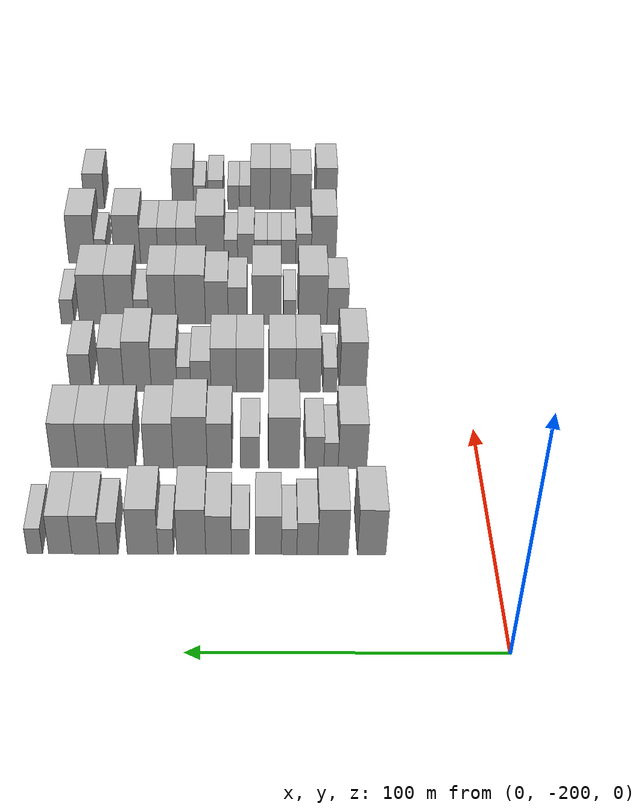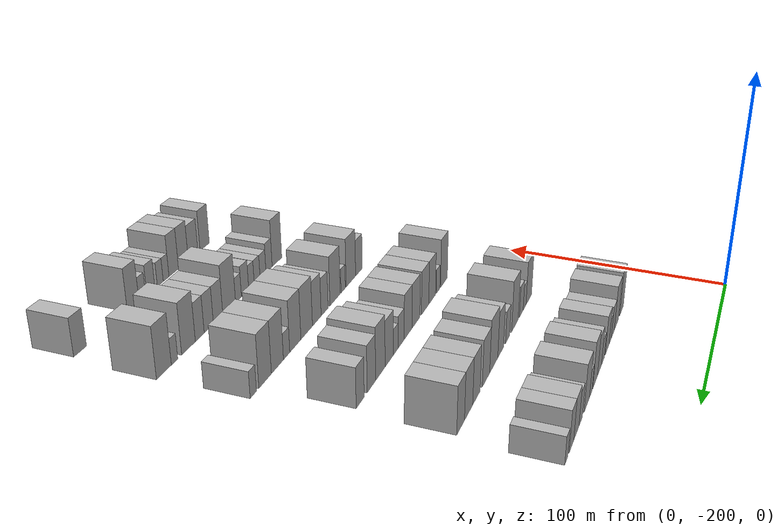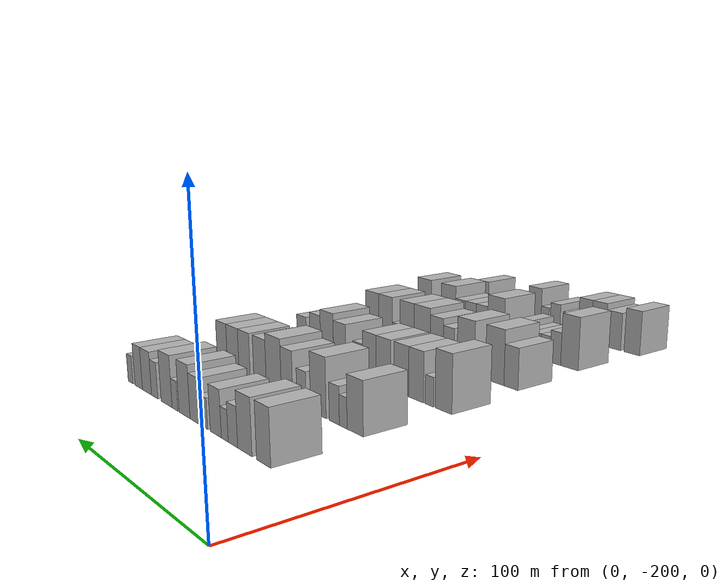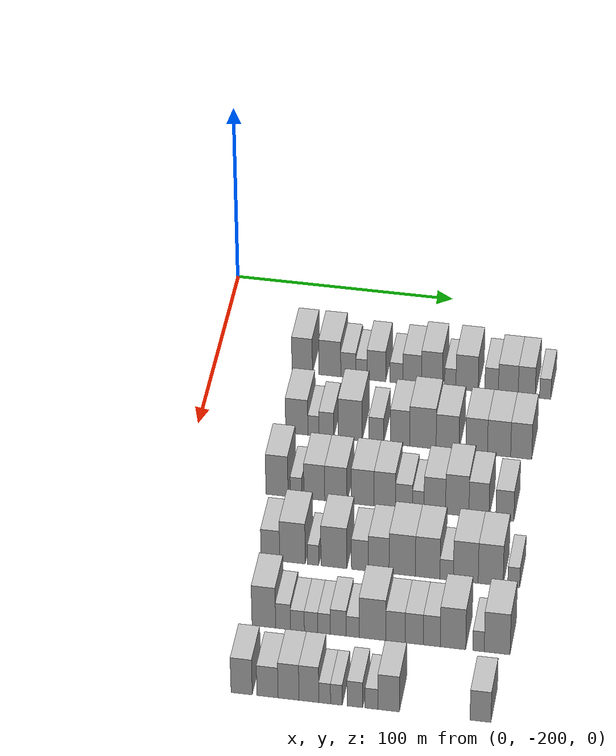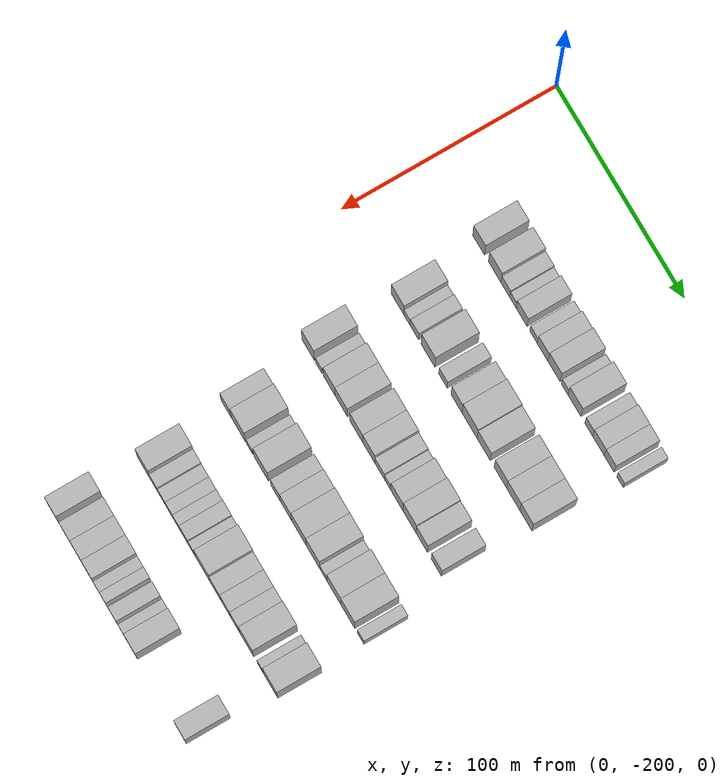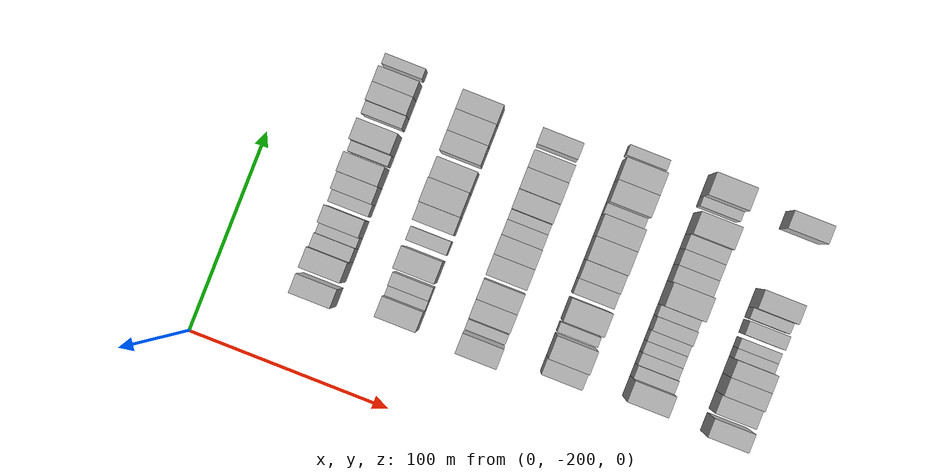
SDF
<sdf version="1.6">
 <world name="default">
  <model name="building_49">
   <static>1</static>
   <pose>50.0000 -159.8376 0 0.000000 0.000000 0.000000</pose>
   <link name="link">
    <pose>0 0 10.50 0 0 0</pose>
    <collision name="collision"><geometry><box><size>20.0000 9.3128 21.0000</size></box></geometry></collision>
    <visual name="visual">
     <cast_shadows>0</cast_shadows>
     <geometry><box><size>20.0000 9.3128 21.0000</size></box></geometry>
     <material>
      <script>
       <uri>model://HANNAS_wall/materials/scripts</uri>
       <uri>model://HANNAS_wall/materials/textures</uri>
       <name>vrc/HANNAS_wall</name>
      </script>
     </material>
    </visual>
   </link>
  </model>
  <model name="building_50">
   <static>1</static>
   <pose>50.0000 -147.2077 0 0.000000 0.000000 0.000000</pose>
   <link name="link">
    <pose>0 0 10.50 0 0 0</pose>
    <collision name="collision"><geometry><box><size>20.0000 9.9470 21.0000</size></box></geometry></collision>
    <visual name="visual">
     <cast_shadows>0</cast_shadows>
     <geometry><box><size>20.0000 9.9470 21.0000</size></box></geometry>
     <material>
      <script>
       <uri>model://HANNAS_wall/materials/scripts</uri>
       <uri>model://HANNAS_wall/materials/textures</uri>
       <name>vrc/HANNAS_wall</name>
      </script>
     </material>
    </visual>
   </link>
  </model>
  <model name="building_51">
   <static>1</static>
   <pose>50.0000 -138.7870 0 0.000000 0.000000 0.000000</pose>
   <link name="link">
    <pose>0 0 7.50 0 0 0</pose>
    <collision name="collision"><geometry><box><size>20.0000 6.8944 15.0000</size></box></geometry></collision>
    <visual name="visual">
     <cast_shadows>0</cast_shadows>
     <geometry><box><size>20.0000 6.8944 15.0000</size></box></geometry>
     <material>
      <script>
       <uri>model://HANNAS_wall/materials/scripts</uri>
       <uri>model://HANNAS_wall/materials/textures</uri>
       <name>vrc/HANNAS_wall</name>
      </script>
     </material>
    </visual>
   </link>
  </model>
  <model name="building_52">
   <static>1</static>
   <pose>50.0000 -132.8043 0 0.000000 0.000000 0.000000</pose>
   <link name="link">
    <pose>0 0 6.00 0 0 0</pose>
    <collision name="collision"><geometry><box><size>20.0000 5.0709 12.0000</size></box></geometry></collision>
    <visual name="visual">
     <cast_shadows>0</cast_shadows>
     <geometry><box><size>20.0000 5.0709 12.0000</size></box></geometry>
     <material>
      <script>
       <uri>model://HANNAS_wall/materials/scripts</uri>
       <uri>model://HANNAS_wall/materials/textures</uri>
       <name>vrc/HANNAS_wall</name>
      </script>
     </material>
    </visual>
   </link>
  </model>
  <model name="building_53">
   <static>1</static>
   <pose>50.0000 -126.0243 0 0.000000 0.000000 0.000000</pose>
   <link name="link">
    <pose>0 0 9.00 0 0 0</pose>
    <collision name="collision"><geometry><box><size>20.0000 8.4893 18.0000</size></box></geometry></collision>
    <visual name="visual">
     <cast_shadows>0</cast_shadows>
     <geometry><box><size>20.0000 8.4893 18.0000</size></box></geometry>
     <material>
      <script>
       <uri>model://HANNAS_wall/materials/scripts</uri>
       <uri>model://HANNAS_wall/materials/textures</uri>
       <name>vrc/HANNAS_wall</name>
      </script>
     </material>
    </visual>
   </link>
  </model>
  <model name="building_54">
   <static>1</static>
   <pose>50.0000 -116.8297 0 0.000000 0.000000 0.000000</pose>
   <link name="link">
    <pose>0 0 6.00 0 0 0</pose>
    <collision name="collision"><geometry><box><size>20.0000 5.8998 12.0000</size></box></geometry></collision>
    <visual name="visual">
     <cast_shadows>0</cast_shadows>
     <geometry><box><size>20.0000 5.8998 12.0000</size></box></geometry>
     <material>
      <script>
       <uri>model://HANNAS_wall/materials/scripts</uri>
       <uri>model://HANNAS_wall/materials/textures</uri>
       <name>vrc/HANNAS_wall</name>
      </script>
     </material>
    </visual>
   </link>
  </model>
  <model name="building_55">
   <static>1</static>
   <pose>50.0000 -109.6865 0 0.000000 0.000000 0.000000</pose>
   <link name="link">
    <pose>0 0 9.00 0 0 0</pose>
    <collision name="collision"><geometry><box><size>20.0000 8.3868 18.0000</size></box></geometry></collision>
    <visual name="visual">
     <cast_shadows>0</cast_shadows>
     <geometry><box><size>20.0000 8.3868 18.0000</size></box></geometry>
     <material>
      <script>
       <uri>model://HANNAS_wall/materials/scripts</uri>
       <uri>model://HANNAS_wall/materials/textures</uri>
       <name>vrc/HANNAS_wall</name>
      </script>
     </material>
    </visual>
   </link>
  </model>
  <model name="building_56">
   <static>1</static>
   <pose>50.0000 -100.7441 0 0.000000 0.000000 0.000000</pose>
   <link name="link">
    <pose>0 0 10.50 0 0 0</pose>
    <collision name="collision"><geometry><box><size>20.0000 9.4980 21.0000</size></box></geometry></collision>
    <visual name="visual">
     <cast_shadows>0</cast_shadows>
     <geometry><box><size>20.0000 9.4980 21.0000</size></box></geometry>
     <material>
      <script>
       <uri>model://HANNAS_wall/materials/scripts</uri>
       <uri>model://HANNAS_wall/materials/textures</uri>
       <name>vrc/HANNAS_wall</name>
      </script>
     </material>
    </visual>
   </link>
  </model>
  <model name="building_57">
   <static>1</static>
   <pose>50.0000 -92.4317 0 0.000000 0.000000 0.000000</pose>
   <link name="link">
    <pose>0 0 6.00 0 0 0</pose>
    <collision name="collision"><geometry><box><size>20.0000 5.1267 12.0000</size></box></geometry></collision>
    <visual name="visual">
     <cast_shadows>0</cast_shadows>
     <geometry><box><size>20.0000 5.1267 12.0000</size></box></geometry>
     <material>
      <script>
       <uri>model://HANNAS_wall/materials/scripts</uri>
       <uri>model://HANNAS_wall/materials/textures</uri>
       <name>vrc/HANNAS_wall</name>
      </script>
     </material>
    </visual>
   </link>
  </model>
  <model name="building_58">
   <static>1</static>
   <pose>50.0000 -84.8206 0 0.000000 0.000000 0.000000</pose>
   <link name="link">
    <pose>0 0 10.50 0 0 0</pose>
    <collision name="collision"><geometry><box><size>20.0000 10.0955 21.0000</size></box></geometry></collision>
    <visual name="visual">
     <cast_shadows>0</cast_shadows>
     <geometry><box><size>20.0000 10.0955 21.0000</size></box></geometry>
     <material>
      <script>
       <uri>model://HANNAS_wall/materials/scripts</uri>
       <uri>model://HANNAS_wall/materials/textures</uri>
       <name>vrc/HANNAS_wall</name>
      </script>
     </material>
    </visual>
   </link>
  </model>
  <model name="building_59">
   <static>1</static>
   <pose>50.0000 -73.6954 0 0.000000 0.000000 0.000000</pose>
   <link name="link">
    <pose>0 0 7.50 0 0 0</pose>
    <collision name="collision"><geometry><box><size>20.0000 6.1550 15.0000</size></box></geometry></collision>
    <visual name="visual">
     <cast_shadows>0</cast_shadows>
     <geometry><box><size>20.0000 6.1550 15.0000</size></box></geometry>
     <material>
      <script>
       <uri>model://HANNAS_wall/materials/scripts</uri>
       <uri>model://HANNAS_wall/materials/textures</uri>
       <name>vrc/HANNAS_wall</name>
      </script>
     </material>
    </visual>
   </link>
  </model>
  <model name="building_60">
   <static>1</static>
   <pose>50.0000 -66.1316 0 0.000000 0.000000 0.000000</pose>
   <link name="link">
    <pose>0 0 9.00 0 0 0</pose>
    <collision name="collision"><geometry><box><size>20.0000 8.9727 18.0000</size></box></geometry></collision>
    <visual name="visual">
     <cast_shadows>0</cast_shadows>
     <geometry><box><size>20.0000 8.9727 18.0000</size></box></geometry>
     <material>
      <script>
       <uri>model://HANNAS_wall/materials/scripts</uri>
       <uri>model://HANNAS_wall/materials/textures</uri>
       <name>vrc/HANNAS_wall</name>
      </script>
     </material>
    </visual>
   </link>
  </model>
  <model name="building_61">
   <static>1</static>
   <pose>50.0000 -57.8184 0 0.000000 0.000000 0.000000</pose>
   <link name="link">
    <pose>0 0 9.00 0 0 0</pose>
    <collision name="collision"><geometry><box><size>20.0000 7.6537 18.0000</size></box></geometry></collision>
    <visual name="visual">
     <cast_shadows>0</cast_shadows>
     <geometry><box><size>20.0000 7.6537 18.0000</size></box></geometry>
     <material>
      <script>
       <uri>model://HANNAS_wall/materials/scripts</uri>
       <uri>model://HANNAS_wall/materials/textures</uri>
       <name>vrc/HANNAS_wall</name>
      </script>
     </material>
    </visual>
   </link>
  </model>
  <model name="building_62">
   <static>1</static>
   <pose>50.0000 -49.4573 0 0.000000 0.000000 0.000000</pose>
   <link name="link">
    <pose>0 0 6.00 0 0 0</pose>
    <collision name="collision"><geometry><box><size>20.0000 5.0685 12.0000</size></box></geometry></collision>
    <visual name="visual">
     <cast_shadows>0</cast_shadows>
     <geometry><box><size>20.0000 5.0685 12.0000</size></box></geometry>
     <material>
      <script>
       <uri>model://HANNAS_wall/materials/scripts</uri>
       <uri>model://HANNAS_wall/materials/textures</uri>
       <name>vrc/HANNAS_wall</name>
      </script>
     </material>
    </visual>
   </link>
  </model>
  <model name="building_187">
   <static>1</static>
   <pose>90.0000 -155.4674 0 0.000000 0.000000 0.000000</pose>
   <link name="link">
    <pose>0 0 10.50 0 0 0</pose>
    <collision name="collision"><geometry><box><size>20.0000 9.9947 21.0000</size></box></geometry></collision>
    <visual name="visual">
     <cast_shadows>0</cast_shadows>
     <geometry><box><size>20.0000 9.9947 21.0000</size></box></geometry>
     <material>
      <script>
       <uri>model://HANNAS_wall/materials/scripts</uri>
       <uri>model://HANNAS_wall/materials/textures</uri>
       <name>vrc/HANNAS_wall</name>
      </script>
     </material>
    </visual>
   </link>
  </model>
  <model name="building_188">
   <static>1</static>
   <pose>90.0000 -147.9866 0 0.000000 0.000000 0.000000</pose>
   <link name="link">
    <pose>0 0 6.00 0 0 0</pose>
    <collision name="collision"><geometry><box><size>20.0000 4.9667 12.0000</size></box></geometry></collision>
    <visual name="visual">
     <cast_shadows>0</cast_shadows>
     <geometry><box><size>20.0000 4.9667 12.0000</size></box></geometry>
     <material>
      <script>
       <uri>model://HANNAS_wall/materials/scripts</uri>
       <uri>model://HANNAS_wall/materials/textures</uri>
       <name>vrc/HANNAS_wall</name>
      </script>
     </material>
    </visual>
   </link>
  </model>
  <model name="building_189">
   <static>1</static>
   <pose>90.0000 -142.1968 0 0.000000 0.000000 0.000000</pose>
   <link name="link">
    <pose>0 0 7.50 0 0 0</pose>
    <collision name="collision"><geometry><box><size>20.0000 6.6129 15.0000</size></box></geometry></collision>
    <visual name="visual">
     <cast_shadows>0</cast_shadows>
     <geometry><box><size>20.0000 6.6129 15.0000</size></box></geometry>
     <material>
      <script>
       <uri>model://HANNAS_wall/materials/scripts</uri>
       <uri>model://HANNAS_wall/materials/textures</uri>
       <name>vrc/HANNAS_wall</name>
      </script>
     </material>
    </visual>
   </link>
  </model>
  <model name="building_190">
   <static>1</static>
   <pose>90.0000 -131.4986 0 0.000000 0.000000 0.000000</pose>
   <link name="link">
    <pose>0 0 12.00 0 0 0</pose>
    <collision name="collision"><geometry><box><size>20.0000 10.7835 24.0000</size></box></geometry></collision>
    <visual name="visual">
     <cast_shadows>0</cast_shadows>
     <geometry><box><size>20.0000 10.7835 24.0000</size></box></geometry>
     <material>
      <script>
       <uri>model://HANNAS_wall/materials/scripts</uri>
       <uri>model://HANNAS_wall/materials/textures</uri>
       <name>vrc/HANNAS_wall</name>
      </script>
     </material>
    </visual>
   </link>
  </model>
  <model name="building_191">
   <static>1</static>
   <pose>90.0000 -119.7519 0 0.000000 0.000000 0.000000</pose>
   <link name="link">
    <pose>0 0 7.50 0 0 0</pose>
    <collision name="collision"><geometry><box><size>20.0000 6.7099 15.0000</size></box></geometry></collision>
    <visual name="visual">
     <cast_shadows>0</cast_shadows>
     <geometry><box><size>20.0000 6.7099 15.0000</size></box></geometry>
     <material>
      <script>
       <uri>model://HANNAS_wall/materials/scripts</uri>
       <uri>model://HANNAS_wall/materials/textures</uri>
       <name>vrc/HANNAS_wall</name>
      </script>
     </material>
    </visual>
   </link>
  </model>
  <model name="building_192">
   <static>1</static>
   <pose>90.0000 -109.0667 0 0.000000 0.000000 0.000000</pose>
   <link name="link">
    <pose>0 0 10.50 0 0 0</pose>
    <collision name="collision"><geometry><box><size>20.0000 8.6605 21.0000</size></box></geometry></collision>
    <visual name="visual">
     <cast_shadows>0</cast_shadows>
     <geometry><box><size>20.0000 8.6605 21.0000</size></box></geometry>
     <material>
      <script>
       <uri>model://HANNAS_wall/materials/scripts</uri>
       <uri>model://HANNAS_wall/materials/textures</uri>
       <name>vrc/HANNAS_wall</name>
      </script>
     </material>
    </visual>
   </link>
  </model>
  <model name="building_193">
   <static>1</static>
   <pose>90.0000 -98.8352 0 0.000000 0.000000 0.000000</pose>
   <link name="link">
    <pose>0 0 12.00 0 0 0</pose>
    <collision name="collision"><geometry><box><size>20.0000 11.8027 24.0000</size></box></geometry></collision>
    <visual name="visual">
     <cast_shadows>0</cast_shadows>
     <geometry><box><size>20.0000 11.8027 24.0000</size></box></geometry>
     <material>
      <script>
       <uri>model://HANNAS_wall/materials/scripts</uri>
       <uri>model://HANNAS_wall/materials/textures</uri>
       <name>vrc/HANNAS_wall</name>
      </script>
     </material>
    </visual>
   </link>
  </model>
  <model name="building_194">
   <static>1</static>
   <pose>90.0000 -87.8120 0 0.000000 0.000000 0.000000</pose>
   <link name="link">
    <pose>0 0 10.50 0 0 0</pose>
    <collision name="collision"><geometry><box><size>20.0000 10.2436 21.0000</size></box></geometry></collision>
    <visual name="visual">
     <cast_shadows>0</cast_shadows>
     <geometry><box><size>20.0000 10.2436 21.0000</size></box></geometry>
     <material>
      <script>
       <uri>model://HANNAS_wall/materials/scripts</uri>
       <uri>model://HANNAS_wall/materials/textures</uri>
       <name>vrc/HANNAS_wall</name>
      </script>
     </material>
    </visual>
   </link>
  </model>
  <model name="building_195">
   <static>1</static>
   <pose>90.0000 -74.8474 0 0.000000 0.000000 0.000000</pose>
   <link name="link">
    <pose>0 0 10.50 0 0 0</pose>
    <collision name="collision"><geometry><box><size>20.0000 9.6856 21.0000</size></box></geometry></collision>
    <visual name="visual">
     <cast_shadows>0</cast_shadows>
     <geometry><box><size>20.0000 9.6856 21.0000</size></box></geometry>
     <material>
      <script>
       <uri>model://HANNAS_wall/materials/scripts</uri>
       <uri>model://HANNAS_wall/materials/textures</uri>
       <name>vrc/HANNAS_wall</name>
      </script>
     </material>
    </visual>
   </link>
  </model>
  <model name="building_196">
   <static>1</static>
   <pose>90.0000 -64.8184 0 0.000000 0.000000 0.000000</pose>
   <link name="link">
    <pose>0 0 10.50 0 0 0</pose>
    <collision name="collision"><geometry><box><size>20.0000 10.3724 21.0000</size></box></geometry></collision>
    <visual name="visual">
     <cast_shadows>0</cast_shadows>
     <geometry><box><size>20.0000 10.3724 21.0000</size></box></geometry>
     <material>
      <script>
       <uri>model://HANNAS_wall/materials/scripts</uri>
       <uri>model://HANNAS_wall/materials/textures</uri>
       <name>vrc/HANNAS_wall</name>
      </script>
     </material>
    </visual>
   </link>
  </model>
  <model name="building_197">
   <static>1</static>
   <pose>90.0000 -54.9266 0 0.000000 0.000000 0.000000</pose>
   <link name="link">
    <pose>0 0 10.50 0 0 0</pose>
    <collision name="collision"><geometry><box><size>20.0000 9.4112 21.0000</size></box></geometry></collision>
    <visual name="visual">
     <cast_shadows>0</cast_shadows>
     <geometry><box><size>20.0000 9.4112 21.0000</size></box></geometry>
     <material>
      <script>
       <uri>model://HANNAS_wall/materials/scripts</uri>
       <uri>model://HANNAS_wall/materials/textures</uri>
       <name>vrc/HANNAS_wall</name>
      </script>
     </material>
    </visual>
   </link>
  </model>
  <model name="building_318">
   <static>1</static>
   <pose>130.0000 -157.4414 0 0.000000 0.000000 0.000000</pose>
   <link name="link">
    <pose>0 0 12.00 0 0 0</pose>
    <collision name="collision"><geometry><box><size>20.0000 9.8017 24.0000</size></box></geometry></collision>
    <visual name="visual">
     <cast_shadows>0</cast_shadows>
     <geometry><box><size>20.0000 9.8017 24.0000</size></box></geometry>
     <material>
      <script>
       <uri>model://HANNAS_wall/materials/scripts</uri>
       <uri>model://HANNAS_wall/materials/textures</uri>
       <name>vrc/HANNAS_wall</name>
      </script>
     </material>
    </visual>
   </link>
  </model>
  <model name="building_319">
   <static>1</static>
   <pose>130.0000 -149.0029 0 0.000000 0.000000 0.000000</pose>
   <link name="link">
    <pose>0 0 6.00 0 0 0</pose>
    <collision name="collision"><geometry><box><size>20.0000 5.0753 12.0000</size></box></geometry></collision>
    <visual name="visual">
     <cast_shadows>0</cast_shadows>
     <geometry><box><size>20.0000 5.0753 12.0000</size></box></geometry>
     <material>
      <script>
       <uri>model://HANNAS_wall/materials/scripts</uri>
       <uri>model://HANNAS_wall/materials/textures</uri>
       <name>vrc/HANNAS_wall</name>
      </script>
     </material>
    </visual>
   </link>
  </model>
  <model name="building_320">
   <static>1</static>
   <pose>130.0000 -140.8505 0 0.000000 0.000000 0.000000</pose>
   <link name="link">
    <pose>0 0 10.50 0 0 0</pose>
    <collision name="collision"><geometry><box><size>20.0000 9.2293 21.0000</size></box></geometry></collision>
    <visual name="visual">
     <cast_shadows>0</cast_shadows>
     <geometry><box><size>20.0000 9.2293 21.0000</size></box></geometry>
     <material>
      <script>
       <uri>model://HANNAS_wall/materials/scripts</uri>
       <uri>model://HANNAS_wall/materials/textures</uri>
       <name>vrc/HANNAS_wall</name>
      </script>
     </material>
    </visual>
   </link>
  </model>
  <model name="building_321">
   <static>1</static>
   <pose>130.0000 -131.3172 0 0.000000 0.000000 0.000000</pose>
   <link name="link">
    <pose>0 0 10.50 0 0 0</pose>
    <collision name="collision"><geometry><box><size>20.0000 9.8373 21.0000</size></box></geometry></collision>
    <visual name="visual">
     <cast_shadows>0</cast_shadows>
     <geometry><box><size>20.0000 9.8373 21.0000</size></box></geometry>
     <material>
      <script>
       <uri>model://HANNAS_wall/materials/scripts</uri>
       <uri>model://HANNAS_wall/materials/textures</uri>
       <name>vrc/HANNAS_wall</name>
      </script>
     </material>
    </visual>
   </link>
  </model>
  <model name="building_322">
   <static>1</static>
   <pose>130.0000 -119.3862 0 0.000000 0.000000 0.000000</pose>
   <link name="link">
    <pose>0 0 10.50 0 0 0</pose>
    <collision name="collision"><geometry><box><size>20.0000 10.0247 21.0000</size></box></geometry></collision>
    <visual name="visual">
     <cast_shadows>0</cast_shadows>
     <geometry><box><size>20.0000 10.0247 21.0000</size></box></geometry>
     <material>
      <script>
       <uri>model://HANNAS_wall/materials/scripts</uri>
       <uri>model://HANNAS_wall/materials/textures</uri>
       <name>vrc/HANNAS_wall</name>
      </script>
     </material>
    </visual>
   </link>
  </model>
  <model name="building_323">
   <static>1</static>
   <pose>130.0000 -109.6363 0 0.000000 0.000000 0.000000</pose>
   <link name="link">
    <pose>0 0 10.50 0 0 0</pose>
    <collision name="collision"><geometry><box><size>20.0000 9.4752 21.0000</size></box></geometry></collision>
    <visual name="visual">
     <cast_shadows>0</cast_shadows>
     <geometry><box><size>20.0000 9.4752 21.0000</size></box></geometry>
     <material>
      <script>
       <uri>model://HANNAS_wall/materials/scripts</uri>
       <uri>model://HANNAS_wall/materials/textures</uri>
       <name>vrc/HANNAS_wall</name>
      </script>
     </material>
    </visual>
   </link>
  </model>
  <model name="building_324">
   <static>1</static>
   <pose>130.0000 -101.1557 0 0.000000 0.000000 0.000000</pose>
   <link name="link">
    <pose>0 0 7.50 0 0 0</pose>
    <collision name="collision"><geometry><box><size>20.0000 7.4860 15.0000</size></box></geometry></collision>
    <visual name="visual">
     <cast_shadows>0</cast_shadows>
     <geometry><box><size>20.0000 7.4860 15.0000</size></box></geometry>
     <material>
      <script>
       <uri>model://HANNAS_wall/materials/scripts</uri>
       <uri>model://HANNAS_wall/materials/textures</uri>
       <name>vrc/HANNAS_wall</name>
      </script>
     </material>
    </visual>
   </link>
  </model>
  <model name="building_325">
   <static>1</static>
   <pose>130.0000 -94.8701 0 0.000000 0.000000 0.000000</pose>
   <link name="link">
    <pose>0 0 6.00 0 0 0</pose>
    <collision name="collision"><geometry><box><size>20.0000 5.0851 12.0000</size></box></geometry></collision>
    <visual name="visual">
     <cast_shadows>0</cast_shadows>
     <geometry><box><size>20.0000 5.0851 12.0000</size></box></geometry>
     <material>
      <script>
       <uri>model://HANNAS_wall/materials/scripts</uri>
       <uri>model://HANNAS_wall/materials/textures</uri>
       <name>vrc/HANNAS_wall</name>
      </script>
     </material>
    </visual>
   </link>
  </model>
  <model name="building_326">
   <static>1</static>
   <pose>130.0000 -87.5760 0 0.000000 0.000000 0.000000</pose>
   <link name="link">
    <pose>0 0 10.50 0 0 0</pose>
    <collision name="collision"><geometry><box><size>20.0000 9.5030 21.0000</size></box></geometry></collision>
    <visual name="visual">
     <cast_shadows>0</cast_shadows>
     <geometry><box><size>20.0000 9.5030 21.0000</size></box></geometry>
     <material>
      <script>
       <uri>model://HANNAS_wall/materials/scripts</uri>
       <uri>model://HANNAS_wall/materials/textures</uri>
       <name>vrc/HANNAS_wall</name>
      </script>
     </material>
    </visual>
   </link>
  </model>
  <model name="building_327">
   <static>1</static>
   <pose>130.0000 -77.6893 0 0.000000 0.000000 0.000000</pose>
   <link name="link">
    <pose>0 0 12.00 0 0 0</pose>
    <collision name="collision"><geometry><box><size>20.0000 10.2704 24.0000</size></box></geometry></collision>
    <visual name="visual">
     <cast_shadows>0</cast_shadows>
     <geometry><box><size>20.0000 10.2704 24.0000</size></box></geometry>
     <material>
      <script>
       <uri>model://HANNAS_wall/materials/scripts</uri>
       <uri>model://HANNAS_wall/materials/textures</uri>
       <name>vrc/HANNAS_wall</name>
      </script>
     </material>
    </visual>
   </link>
  </model>
  <model name="building_328">
   <static>1</static>
   <pose>130.0000 -68.1369 0 0.000000 0.000000 0.000000</pose>
   <link name="link">
    <pose>0 0 10.50 0 0 0</pose>
    <collision name="collision"><geometry><box><size>20.0000 8.8345 21.0000</size></box></geometry></collision>
    <visual name="visual">
     <cast_shadows>0</cast_shadows>
     <geometry><box><size>20.0000 8.8345 21.0000</size></box></geometry>
     <material>
      <script>
       <uri>model://HANNAS_wall/materials/scripts</uri>
       <uri>model://HANNAS_wall/materials/textures</uri>
       <name>vrc/HANNAS_wall</name>
      </script>
     </material>
    </visual>
   </link>
  </model>
  <model name="building_329">
   <static>1</static>
   <pose>130.0000 -56.7479 0 0.000000 0.000000 0.000000</pose>
   <link name="link">
    <pose>0 0 9.00 0 0 0</pose>
    <collision name="collision"><geometry><box><size>20.0000 7.9434 18.0000</size></box></geometry></collision>
    <visual name="visual">
     <cast_shadows>0</cast_shadows>
     <geometry><box><size>20.0000 7.9434 18.0000</size></box></geometry>
     <material>
      <script>
       <uri>model://HANNAS_wall/materials/scripts</uri>
       <uri>model://HANNAS_wall/materials/textures</uri>
       <name>vrc/HANNAS_wall</name>
      </script>
     </material>
    </visual>
   </link>
  </model>
  <model name="building_451">
   <static>1</static>
   <pose>170.0000 -153.3795 0 0.000000 0.000000 0.000000</pose>
   <link name="link">
    <pose>0 0 9.00 0 0 0</pose>
    <collision name="collision"><geometry><box><size>20.0000 8.1772 18.0000</size></box></geometry></collision>
    <visual name="visual">
     <cast_shadows>0</cast_shadows>
     <geometry><box><size>20.0000 8.1772 18.0000</size></box></geometry>
     <material>
      <script>
       <uri>model://HANNAS_wall/materials/scripts</uri>
       <uri>model://HANNAS_wall/materials/textures</uri>
       <name>vrc/HANNAS_wall</name>
      </script>
     </material>
    </visual>
   </link>
  </model>
  <model name="building_452">
   <static>1</static>
   <pose>170.0000 -143.7002 0 0.000000 0.000000 0.000000</pose>
   <link name="link">
    <pose>0 0 12.00 0 0 0</pose>
    <collision name="collision"><geometry><box><size>20.0000 11.1813 24.0000</size></box></geometry></collision>
    <visual name="visual">
     <cast_shadows>0</cast_shadows>
     <geometry><box><size>20.0000 11.1813 24.0000</size></box></geometry>
     <material>
      <script>
       <uri>model://HANNAS_wall/materials/scripts</uri>
       <uri>model://HANNAS_wall/materials/textures</uri>
       <name>vrc/HANNAS_wall</name>
      </script>
     </material>
    </visual>
   </link>
  </model>
  <model name="building_453">
   <static>1</static>
   <pose>170.0000 -134.6810 0 0.000000 0.000000 0.000000</pose>
   <link name="link">
    <pose>0 0 6.00 0 0 0</pose>
    <collision name="collision"><geometry><box><size>20.0000 4.8571 12.0000</size></box></geometry></collision>
    <visual name="visual">
     <cast_shadows>0</cast_shadows>
     <geometry><box><size>20.0000 4.8571 12.0000</size></box></geometry>
     <material>
      <script>
       <uri>model://HANNAS_wall/materials/scripts</uri>
       <uri>model://HANNAS_wall/materials/textures</uri>
       <name>vrc/HANNAS_wall</name>
      </script>
     </material>
    </visual>
   </link>
  </model>
  <model name="building_454">
   <static>1</static>
   <pose>170.0000 -125.5903 0 0.000000 0.000000 0.000000</pose>
   <link name="link">
    <pose>0 0 12.00 0 0 0</pose>
    <collision name="collision"><geometry><box><size>20.0000 11.3244 24.0000</size></box></geometry></collision>
    <visual name="visual">
     <cast_shadows>0</cast_shadows>
     <geometry><box><size>20.0000 11.3244 24.0000</size></box></geometry>
     <material>
      <script>
       <uri>model://HANNAS_wall/materials/scripts</uri>
       <uri>model://HANNAS_wall/materials/textures</uri>
       <name>vrc/HANNAS_wall</name>
      </script>
     </material>
    </visual>
   </link>
  </model>
  <model name="building_455">
   <static>1</static>
   <pose>170.0000 -114.2253 0 0.000000 0.000000 0.000000</pose>
   <link name="link">
    <pose>0 0 9.00 0 0 0</pose>
    <collision name="collision"><geometry><box><size>20.0000 7.4057 18.0000</size></box></geometry></collision>
    <visual name="visual">
     <cast_shadows>0</cast_shadows>
     <geometry><box><size>20.0000 7.4057 18.0000</size></box></geometry>
     <material>
      <script>
       <uri>model://HANNAS_wall/materials/scripts</uri>
       <uri>model://HANNAS_wall/materials/textures</uri>
       <name>vrc/HANNAS_wall</name>
      </script>
     </material>
    </visual>
   </link>
  </model>
  <model name="building_456">
   <static>1</static>
   <pose>170.0000 -106.0465 0 0.000000 0.000000 0.000000</pose>
   <link name="link">
    <pose>0 0 10.50 0 0 0</pose>
    <collision name="collision"><geometry><box><size>20.0000 8.9519 21.0000</size></box></geometry></collision>
    <visual name="visual">
     <cast_shadows>0</cast_shadows>
     <geometry><box><size>20.0000 8.9519 21.0000</size></box></geometry>
     <material>
      <script>
       <uri>model://HANNAS_wall/materials/scripts</uri>
       <uri>model://HANNAS_wall/materials/textures</uri>
       <name>vrc/HANNAS_wall</name>
      </script>
     </material>
    </visual>
   </link>
  </model>
  <model name="building_457">
   <static>1</static>
   <pose>170.0000 -95.8116 0 0.000000 0.000000 0.000000</pose>
   <link name="link">
    <pose>0 0 12.00 0 0 0</pose>
    <collision name="collision"><geometry><box><size>20.0000 11.5178 24.0000</size></box></geometry></collision>
    <visual name="visual">
     <cast_shadows>0</cast_shadows>
     <geometry><box><size>20.0000 11.5178 24.0000</size></box></geometry>
     <material>
      <script>
       <uri>model://HANNAS_wall/materials/scripts</uri>
       <uri>model://HANNAS_wall/materials/textures</uri>
       <name>vrc/HANNAS_wall</name>
      </script>
     </material>
    </visual>
   </link>
  </model>
  <model name="building_458">
   <static>1</static>
   <pose>170.0000 -84.7206 0 0.000000 0.000000 0.000000</pose>
   <link name="link">
    <pose>0 0 12.00 0 0 0</pose>
    <collision name="collision"><geometry><box><size>20.0000 10.6644 24.0000</size></box></geometry></collision>
    <visual name="visual">
     <cast_shadows>0</cast_shadows>
     <geometry><box><size>20.0000 10.6644 24.0000</size></box></geometry>
     <material>
      <script>
       <uri>model://HANNAS_wall/materials/scripts</uri>
       <uri>model://HANNAS_wall/materials/textures</uri>
       <name>vrc/HANNAS_wall</name>
      </script>
     </material>
    </visual>
   </link>
  </model>
  <model name="building_459">
   <static>1</static>
   <pose>170.0000 -76.4762 0 0.000000 0.000000 0.000000</pose>
   <link name="link">
    <pose>0 0 6.00 0 0 0</pose>
    <collision name="collision"><geometry><box><size>20.0000 5.8243 12.0000</size></box></geometry></collision>
    <visual name="visual">
     <cast_shadows>0</cast_shadows>
     <geometry><box><size>20.0000 5.8243 12.0000</size></box></geometry>
     <material>
      <script>
       <uri>model://HANNAS_wall/materials/scripts</uri>
       <uri>model://HANNAS_wall/materials/textures</uri>
       <name>vrc/HANNAS_wall</name>
      </script>
     </material>
    </visual>
   </link>
  </model>
  <model name="building_460">
   <static>1</static>
   <pose>170.0000 -68.1817 0 0.000000 0.000000 0.000000</pose>
   <link name="link">
    <pose>0 0 12.00 0 0 0</pose>
    <collision name="collision"><geometry><box><size>20.0000 10.7645 24.0000</size></box></geometry></collision>
    <visual name="visual">
     <cast_shadows>0</cast_shadows>
     <geometry><box><size>20.0000 10.7645 24.0000</size></box></geometry>
     <material>
      <script>
       <uri>model://HANNAS_wall/materials/scripts</uri>
       <uri>model://HANNAS_wall/materials/textures</uri>
       <name>vrc/HANNAS_wall</name>
      </script>
     </material>
    </visual>
   </link>
  </model>
  <model name="building_461">
   <static>1</static>
   <pose>170.0000 -57.4086 0 0.000000 0.000000 0.000000</pose>
   <link name="link">
    <pose>0 0 12.00 0 0 0</pose>
    <collision name="collision"><geometry><box><size>20.0000 10.7818 24.0000</size></box></geometry></collision>
    <visual name="visual">
     <cast_shadows>0</cast_shadows>
     <geometry><box><size>20.0000 10.7818 24.0000</size></box></geometry>
     <material>
      <script>
       <uri>model://HANNAS_wall/materials/scripts</uri>
       <uri>model://HANNAS_wall/materials/textures</uri>
       <name>vrc/HANNAS_wall</name>
      </script>
     </material>
    </visual>
   </link>
  </model>
  <model name="building_462">
   <static>1</static>
   <pose>170.0000 -47.4289 0 0.000000 0.000000 0.000000</pose>
   <link name="link">
    <pose>0 0 6.00 0 0 0</pose>
    <collision name="collision"><geometry><box><size>20.0000 5.1775 12.0000</size></box></geometry></collision>
    <visual name="visual">
     <cast_shadows>0</cast_shadows>
     <geometry><box><size>20.0000 5.1775 12.0000</size></box></geometry>
     <material>
      <script>
       <uri>model://HANNAS_wall/materials/scripts</uri>
       <uri>model://HANNAS_wall/materials/textures</uri>
       <name>vrc/HANNAS_wall</name>
      </script>
     </material>
    </visual>
   </link>
  </model>
  <model name="building_580">
   <static>1</static>
   <pose>210.0000 -149.2162 0 0.000000 0.000000 0.000000</pose>
   <link name="link">
    <pose>0 0 12.00 0 0 0</pose>
    <collision name="collision"><geometry><box><size>20.0000 10.2017 24.0000</size></box></geometry></collision>
    <visual name="visual">
     <cast_shadows>0</cast_shadows>
     <geometry><box><size>20.0000 10.2017 24.0000</size></box></geometry>
     <material>
      <script>
       <uri>model://HANNAS_wall/materials/scripts</uri>
       <uri>model://HANNAS_wall/materials/textures</uri>
       <name>vrc/HANNAS_wall</name>
      </script>
     </material>
    </visual>
   </link>
  </model>
  <model name="building_581">
   <static>1</static>
   <pose>210.0000 -140.9193 0 0.000000 0.000000 0.000000</pose>
   <link name="link">
    <pose>0 0 7.50 0 0 0</pose>
    <collision name="collision"><geometry><box><size>20.0000 6.3920 15.0000</size></box></geometry></collision>
    <visual name="visual">
     <cast_shadows>0</cast_shadows>
     <geometry><box><size>20.0000 6.3920 15.0000</size></box></geometry>
     <material>
      <script>
       <uri>model://HANNAS_wall/materials/scripts</uri>
       <uri>model://HANNAS_wall/materials/textures</uri>
       <name>vrc/HANNAS_wall</name>
      </script>
     </material>
    </visual>
   </link>
  </model>
  <model name="building_582">
   <static>1</static>
   <pose>210.0000 -134.7371 0 0.000000 0.000000 0.000000</pose>
   <link name="link">
    <pose>0 0 6.00 0 0 0</pose>
    <collision name="collision"><geometry><box><size>20.0000 5.9724 12.0000</size></box></geometry></collision>
    <visual name="visual">
     <cast_shadows>0</cast_shadows>
     <geometry><box><size>20.0000 5.9724 12.0000</size></box></geometry>
     <material>
      <script>
       <uri>model://HANNAS_wall/materials/scripts</uri>
       <uri>model://HANNAS_wall/materials/textures</uri>
       <name>vrc/HANNAS_wall</name>
      </script>
     </material>
    </visual>
   </link>
  </model>
  <model name="building_583">
   <static>1</static>
   <pose>210.0000 -128.8517 0 0.000000 0.000000 0.000000</pose>
   <link name="link">
    <pose>0 0 6.00 0 0 0</pose>
    <collision name="collision"><geometry><box><size>20.0000 5.7986 12.0000</size></box></geometry></collision>
    <visual name="visual">
     <cast_shadows>0</cast_shadows>
     <geometry><box><size>20.0000 5.7986 12.0000</size></box></geometry>
     <material>
      <script>
       <uri>model://HANNAS_wall/materials/scripts</uri>
       <uri>model://HANNAS_wall/materials/textures</uri>
       <name>vrc/HANNAS_wall</name>
      </script>
     </material>
    </visual>
   </link>
  </model>
  <model name="building_584">
   <static>1</static>
   <pose>210.0000 -123.2693 0 0.000000 0.000000 0.000000</pose>
   <link name="link">
    <pose>0 0 6.00 0 0 0</pose>
    <collision name="collision"><geometry><box><size>20.0000 5.3662 12.0000</size></box></geometry></collision>
    <visual name="visual">
     <cast_shadows>0</cast_shadows>
     <geometry><box><size>20.0000 5.3662 12.0000</size></box></geometry>
     <material>
      <script>
       <uri>model://HANNAS_wall/materials/scripts</uri>
       <uri>model://HANNAS_wall/materials/textures</uri>
       <name>vrc/HANNAS_wall</name>
      </script>
     </material>
    </visual>
   </link>
  </model>
  <model name="building_585">
   <static>1</static>
   <pose>210.0000 -117.1336 0 0.000000 0.000000 0.000000</pose>
   <link name="link">
    <pose>0 0 7.50 0 0 0</pose>
    <collision name="collision"><geometry><box><size>20.0000 6.9051 15.0000</size></box></geometry></collision>
    <visual name="visual">
     <cast_shadows>0</cast_shadows>
     <geometry><box><size>20.0000 6.9051 15.0000</size></box></geometry>
     <material>
      <script>
       <uri>model://HANNAS_wall/materials/scripts</uri>
       <uri>model://HANNAS_wall/materials/textures</uri>
       <name>vrc/HANNAS_wall</name>
      </script>
     </material>
    </visual>
   </link>
  </model>
  <model name="building_586">
   <static>1</static>
   <pose>210.0000 -110.9368 0 0.000000 0.000000 0.000000</pose>
   <link name="link">
    <pose>0 0 6.00 0 0 0</pose>
    <collision name="collision"><geometry><box><size>20.0000 5.4885 12.0000</size></box></geometry></collision>
    <visual name="visual">
     <cast_shadows>0</cast_shadows>
     <geometry><box><size>20.0000 5.4885 12.0000</size></box></geometry>
     <material>
      <script>
       <uri>model://HANNAS_wall/materials/scripts</uri>
       <uri>model://HANNAS_wall/materials/textures</uri>
       <name>vrc/HANNAS_wall</name>
      </script>
     </material>
    </visual>
   </link>
  </model>
  <model name="building_587">
   <static>1</static>
   <pose>210.0000 -102.4226 0 0.000000 0.000000 0.000000</pose>
   <link name="link">
    <pose>0 0 12.00 0 0 0</pose>
    <collision name="collision"><geometry><box><size>20.0000 11.5400 24.0000</size></box></geometry></collision>
    <visual name="visual">
     <cast_shadows>0</cast_shadows>
     <geometry><box><size>20.0000 11.5400 24.0000</size></box></geometry>
     <material>
      <script>
       <uri>model://HANNAS_wall/materials/scripts</uri>
       <uri>model://HANNAS_wall/materials/textures</uri>
       <name>vrc/HANNAS_wall</name>
      </script>
     </material>
    </visual>
   </link>
  </model>
  <model name="building_588">
   <static>1</static>
   <pose>210.0000 -92.5553 0 0.000000 0.000000 0.000000</pose>
   <link name="link">
    <pose>0 0 9.00 0 0 0</pose>
    <collision name="collision"><geometry><box><size>20.0000 8.1945 18.0000</size></box></geometry></collision>
    <visual name="visual">
     <cast_shadows>0</cast_shadows>
     <geometry><box><size>20.0000 8.1945 18.0000</size></box></geometry>
     <material>
      <script>
       <uri>model://HANNAS_wall/materials/scripts</uri>
       <uri>model://HANNAS_wall/materials/textures</uri>
       <name>vrc/HANNAS_wall</name>
      </script>
     </material>
    </visual>
   </link>
  </model>
  <model name="building_589">
   <static>1</static>
   <pose>210.0000 -84.5698 0 0.000000 0.000000 0.000000</pose>
   <link name="link">
    <pose>0 0 9.00 0 0 0</pose>
    <collision name="collision"><geometry><box><size>20.0000 7.7767 18.0000</size></box></geometry></collision>
    <visual name="visual">
     <cast_shadows>0</cast_shadows>
     <geometry><box><size>20.0000 7.7767 18.0000</size></box></geometry>
     <material>
      <script>
       <uri>model://HANNAS_wall/materials/scripts</uri>
       <uri>model://HANNAS_wall/materials/textures</uri>
       <name>vrc/HANNAS_wall</name>
      </script>
     </material>
    </visual>
   </link>
  </model>
  <model name="building_590">
   <static>1</static>
   <pose>210.0000 -77.0249 0 0.000000 0.000000 0.000000</pose>
   <link name="link">
    <pose>0 0 9.00 0 0 0</pose>
    <collision name="collision"><geometry><box><size>20.0000 7.3129 18.0000</size></box></geometry></collision>
    <visual name="visual">
     <cast_shadows>0</cast_shadows>
     <geometry><box><size>20.0000 7.3129 18.0000</size></box></geometry>
     <material>
      <script>
       <uri>model://HANNAS_wall/materials/scripts</uri>
       <uri>model://HANNAS_wall/materials/textures</uri>
       <name>vrc/HANNAS_wall</name>
      </script>
     </material>
    </visual>
   </link>
  </model>
  <model name="building_591">
   <static>1</static>
   <pose>210.0000 -67.9214 0 0.000000 0.000000 0.000000</pose>
   <link name="link">
    <pose>0 0 12.00 0 0 0</pose>
    <collision name="collision"><geometry><box><size>20.0000 10.8942 24.0000</size></box></geometry></collision>
    <visual name="visual">
     <cast_shadows>0</cast_shadows>
     <geometry><box><size>20.0000 10.8942 24.0000</size></box></geometry>
     <material>
      <script>
       <uri>model://HANNAS_wall/materials/scripts</uri>
       <uri>model://HANNAS_wall/materials/textures</uri>
       <name>vrc/HANNAS_wall</name>
      </script>
     </material>
    </visual>
   </link>
  </model>
  <model name="building_592">
   <static>1</static>
   <pose>210.0000 -57.0270 0 0.000000 0.000000 0.000000</pose>
   <link name="link">
    <pose>0 0 6.00 0 0 0</pose>
    <collision name="collision"><geometry><box><size>20.0000 4.8947 12.0000</size></box></geometry></collision>
    <visual name="visual">
     <cast_shadows>0</cast_shadows>
     <geometry><box><size>20.0000 4.8947 12.0000</size></box></geometry>
     <material>
      <script>
       <uri>model://HANNAS_wall/materials/scripts</uri>
       <uri>model://HANNAS_wall/materials/textures</uri>
       <name>vrc/HANNAS_wall</name>
      </script>
     </material>
    </visual>
   </link>
  </model>
  <model name="building_593">
   <static>1</static>
   <pose>210.0000 -49.0621 0 0.000000 0.000000 0.000000</pose>
   <link name="link">
    <pose>0 0 12.00 0 0 0</pose>
    <collision name="collision"><geometry><box><size>20.0000 11.0351 24.0000</size></box></geometry></collision>
    <visual name="visual">
     <cast_shadows>0</cast_shadows>
     <geometry><box><size>20.0000 11.0351 24.0000</size></box></geometry>
     <material>
      <script>
       <uri>model://HANNAS_wall/materials/scripts</uri>
       <uri>model://HANNAS_wall/materials/textures</uri>
       <name>vrc/HANNAS_wall</name>
      </script>
     </material>
    </visual>
   </link>
  </model>
  <model name="building_714">
   <static>1</static>
   <pose>250.0000 -151.6289 0 0.000000 0.000000 0.000000</pose>
   <link name="link">
    <pose>0 0 10.50 0 0 0</pose>
    <collision name="collision"><geometry><box><size>20.0000 9.0361 21.0000</size></box></geometry></collision>
    <visual name="visual">
     <cast_shadows>0</cast_shadows>
     <geometry><box><size>20.0000 9.0361 21.0000</size></box></geometry>
     <material>
      <script>
       <uri>model://HANNAS_wall/materials/scripts</uri>
       <uri>model://HANNAS_wall/materials/textures</uri>
       <name>vrc/HANNAS_wall</name>
      </script>
     </material>
    </visual>
   </link>
  </model>
  <model name="building_715">
   <static>1</static>
   <pose>250.0000 -140.6137 0 0.000000 0.000000 0.000000</pose>
   <link name="link">
    <pose>0 0 9.00 0 0 0</pose>
    <collision name="collision"><geometry><box><size>20.0000 8.9943 18.0000</size></box></geometry></collision>
    <visual name="visual">
     <cast_shadows>0</cast_shadows>
     <geometry><box><size>20.0000 8.9943 18.0000</size></box></geometry>
     <material>
      <script>
       <uri>model://HANNAS_wall/materials/scripts</uri>
       <uri>model://HANNAS_wall/materials/textures</uri>
       <name>vrc/HANNAS_wall</name>
      </script>
     </material>
    </visual>
   </link>
  </model>
  <model name="building_716">
   <static>1</static>
   <pose>250.0000 -131.6761 0 0.000000 0.000000 0.000000</pose>
   <link name="link">
    <pose>0 0 10.50 0 0 0</pose>
    <collision name="collision"><geometry><box><size>20.0000 8.8809 21.0000</size></box></geometry></collision>
    <visual name="visual">
     <cast_shadows>0</cast_shadows>
     <geometry><box><size>20.0000 8.8809 21.0000</size></box></geometry>
     <material>
      <script>
       <uri>model://HANNAS_wall/materials/scripts</uri>
       <uri>model://HANNAS_wall/materials/textures</uri>
       <name>vrc/HANNAS_wall</name>
      </script>
     </material>
    </visual>
   </link>
  </model>
  <model name="building_717">
   <static>1</static>
   <pose>250.0000 -123.0321 0 0.000000 0.000000 0.000000</pose>
   <link name="link">
    <pose>0 0 10.50 0 0 0</pose>
    <collision name="collision"><geometry><box><size>20.0000 8.4072 21.0000</size></box></geometry></collision>
    <visual name="visual">
     <cast_shadows>0</cast_shadows>
     <geometry><box><size>20.0000 8.4072 21.0000</size></box></geometry>
     <material>
      <script>
       <uri>model://HANNAS_wall/materials/scripts</uri>
       <uri>model://HANNAS_wall/materials/textures</uri>
       <name>vrc/HANNAS_wall</name>
      </script>
     </material>
    </visual>
   </link>
  </model>
  <model name="building_718">
   <static>1</static>
   <pose>250.0000 -116.3479 0 0.000000 0.000000 0.000000</pose>
   <link name="link">
    <pose>0 0 6.00 0 0 0</pose>
    <collision name="collision"><geometry><box><size>20.0000 4.9613 12.0000</size></box></geometry></collision>
    <visual name="visual">
     <cast_shadows>0</cast_shadows>
     <geometry><box><size>20.0000 4.9613 12.0000</size></box></geometry>
     <material>
      <script>
       <uri>model://HANNAS_wall/materials/scripts</uri>
       <uri>model://HANNAS_wall/materials/textures</uri>
       <name>vrc/HANNAS_wall</name>
      </script>
     </material>
    </visual>
   </link>
  </model>
  <model name="building_719">
   <static>1</static>
   <pose>250.0000 -111.3670 0 0.000000 0.000000 0.000000</pose>
   <link name="link">
    <pose>0 0 6.00 0 0 0</pose>
    <collision name="collision"><geometry><box><size>20.0000 5.0004 12.0000</size></box></geometry></collision>
    <visual name="visual">
     <cast_shadows>0</cast_shadows>
     <geometry><box><size>20.0000 5.0004 12.0000</size></box></geometry>
     <material>
      <script>
       <uri>model://HANNAS_wall/materials/scripts</uri>
       <uri>model://HANNAS_wall/materials/textures</uri>
       <name>vrc/HANNAS_wall</name>
      </script>
     </material>
    </visual>
   </link>
  </model>
  <model name="building_720">
   <static>1</static>
   <pose>250.0000 -103.5437 0 0.000000 0.000000 0.000000</pose>
   <link name="link">
    <pose>0 0 7.50 0 0 0</pose>
    <collision name="collision"><geometry><box><size>20.0000 6.6461 15.0000</size></box></geometry></collision>
    <visual name="visual">
     <cast_shadows>0</cast_shadows>
     <geometry><box><size>20.0000 6.6461 15.0000</size></box></geometry>
     <material>
      <script>
       <uri>model://HANNAS_wall/materials/scripts</uri>
       <uri>model://HANNAS_wall/materials/textures</uri>
       <name>vrc/HANNAS_wall</name>
      </script>
     </material>
    </visual>
   </link>
  </model>
  <model name="building_721">
   <static>1</static>
   <pose>250.0000 -96.5488 0 0.000000 0.000000 0.000000</pose>
   <link name="link">
    <pose>0 0 6.00 0 0 0</pose>
    <collision name="collision"><geometry><box><size>20.0000 5.3438 12.0000</size></box></geometry></collision>
    <visual name="visual">
     <cast_shadows>0</cast_shadows>
     <geometry><box><size>20.0000 5.3438 12.0000</size></box></geometry>
     <material>
      <script>
       <uri>model://HANNAS_wall/materials/scripts</uri>
       <uri>model://HANNAS_wall/materials/textures</uri>
       <name>vrc/HANNAS_wall</name>
      </script>
     </material>
    </visual>
   </link>
  </model>
  <model name="building_722">
   <static>1</static>
   <pose>250.0000 -89.2938 0 0.000000 0.000000 0.000000</pose>
   <link name="link">
    <pose>0 0 10.50 0 0 0</pose>
    <collision name="collision"><geometry><box><size>20.0000 9.1662 21.0000</size></box></geometry></collision>
    <visual name="visual">
     <cast_shadows>0</cast_shadows>
     <geometry><box><size>20.0000 9.1662 21.0000</size></box></geometry>
     <material>
      <script>
       <uri>model://HANNAS_wall/materials/scripts</uri>
       <uri>model://HANNAS_wall/materials/textures</uri>
       <name>vrc/HANNAS_wall</name>
      </script>
     </material>
    </visual>
   </link>
  </model>
  <model name="building_723">
   <static>1</static>
   <pose>250.0000 -50.5209 0 0.000000 0.000000 0.000000</pose>
   <link name="link">
    <pose>0 0 9.00 0 0 0</pose>
    <collision name="collision"><geometry><box><size>20.0000 8.7932 18.0000</size></box></geometry></collision>
    <visual name="visual">
     <cast_shadows>0</cast_shadows>
     <geometry><box><size>20.0000 8.7932 18.0000</size></box></geometry>
     <material>
      <script>
       <uri>model://HANNAS_wall/materials/scripts</uri>
       <uri>model://HANNAS_wall/materials/textures</uri>
       <name>vrc/HANNAS_wall</name>
      </script>
     </material>
    </visual>
   </link>
  </model>
 </world>
</sdf>
